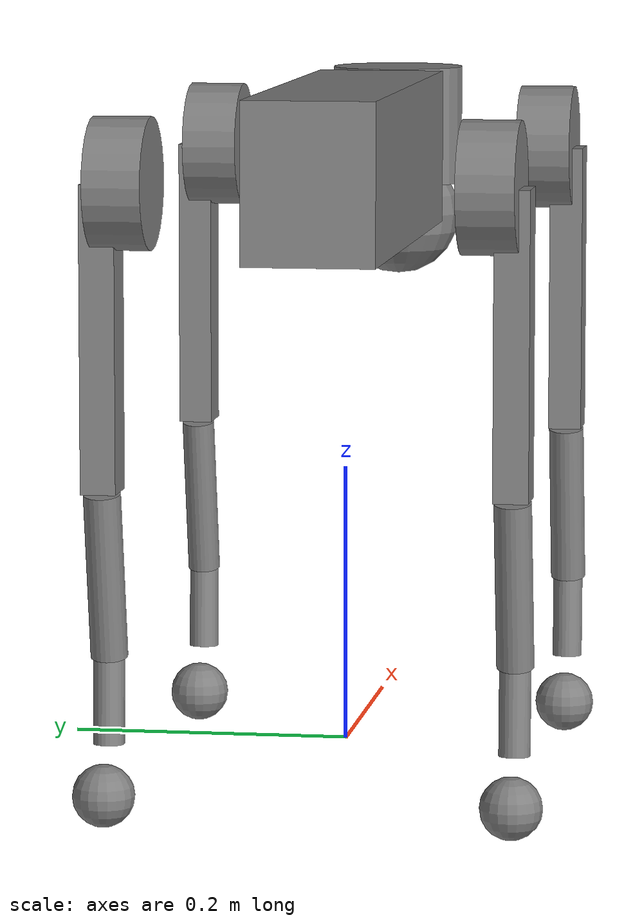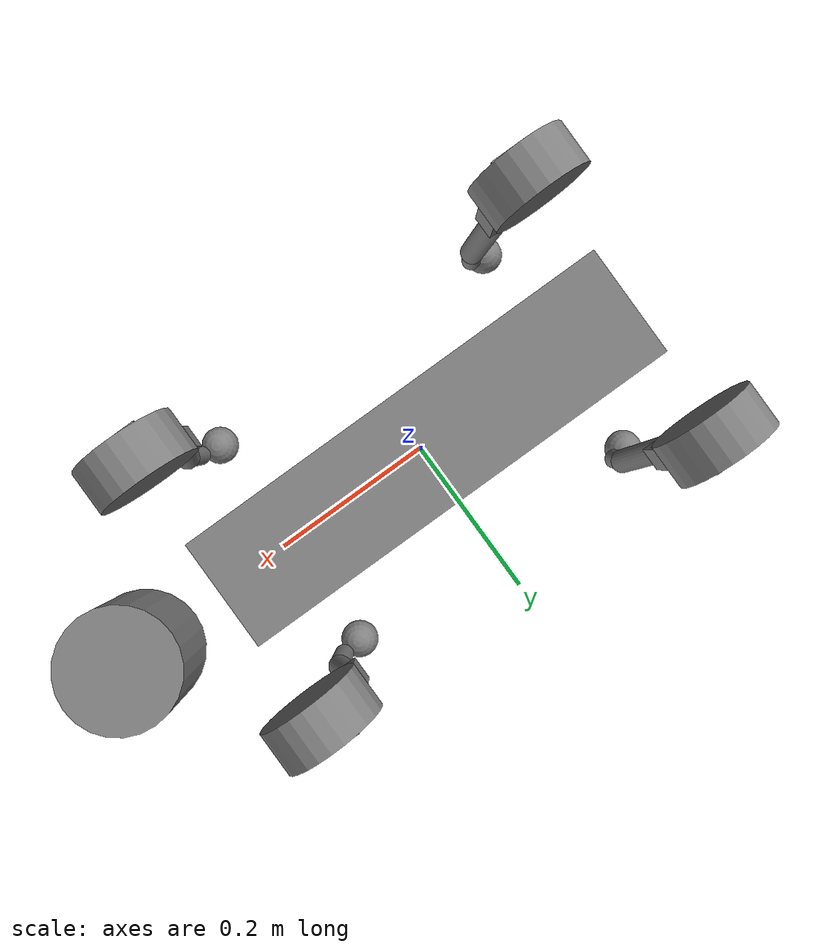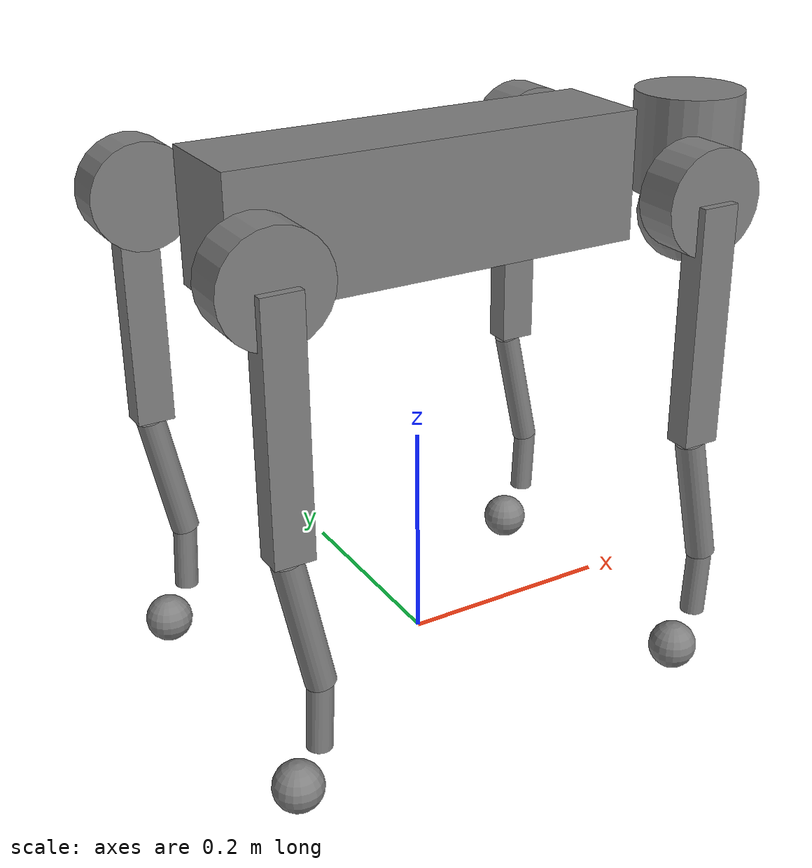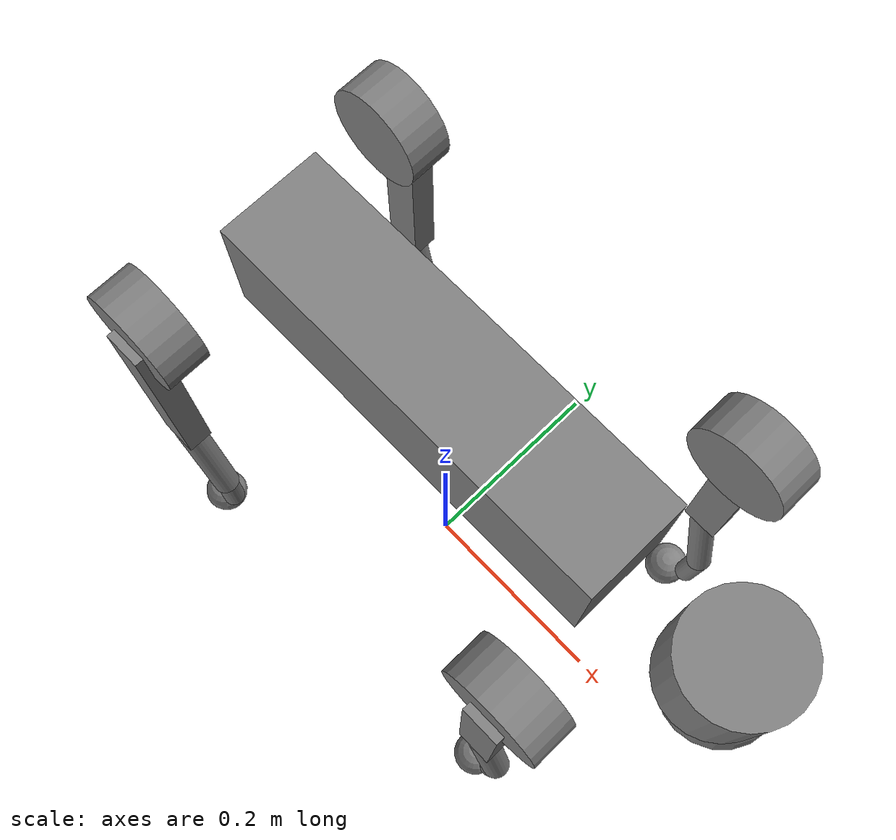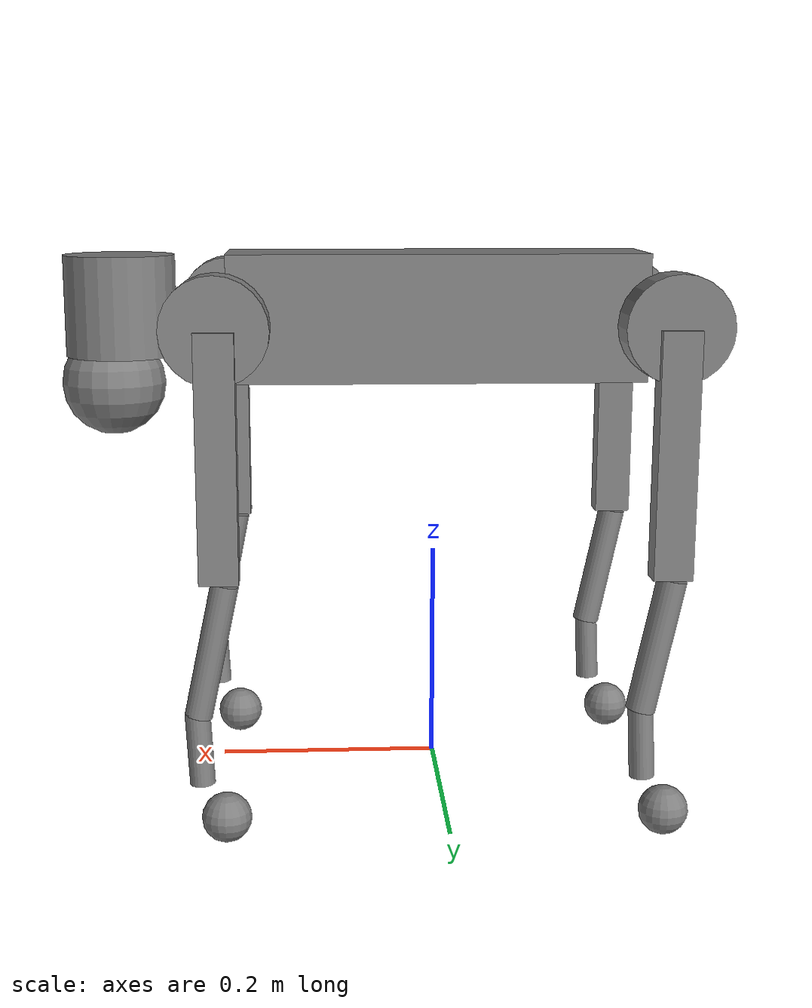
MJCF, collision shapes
<mujoco model="go2">

  <compiler angle="radian" meshdir="assets" autolimits="true" />

  <option cone="elliptic" impratio="100" />

  <default>
    <default class="go2">
      <geom friction="1.0" margin="0.001" condim="1"/>
      <!-- damping and armature explicit here; set armature="0" if rotor bodies
           are providing all reflected inertia and you want no double-counting -->
      <joint axis="0 1 0" damping="0.01" armature="0.01" frictionloss="0.0"/>
      <motor ctrlrange="-23.7 23.7"/>
      <default class="abduction">
        <joint axis="1 0 0" range="-1.0472 1.0472"/>
      </default>
      <default class="hip">
        <default class="front_hip">
          <joint range="-1.5708 3.4907" />
        </default>
        <default class="back_hip">
          <joint range="-0.5236 4.5379"/>
        </default>
      </default>
      <default class="knee">
        <joint range="-2.7227 -0.83776" damping="0.01"/>
        <motor ctrlrange="-45.43 45.43"/>
      </default>
      <default class="visual">
        <geom type="mesh" contype="0" conaffinity="0" group="2"/>
      </default>
      <default class="collision">
        <geom group="3"/>
        <default class="foot">
          <geom size="0.022" pos="-0.002 0 -0.213" priority="1" condim="6"
            friction="1.0 0.02 0.01"/>
        </default>
      </default>
      <!-- zero-mass placeholder for sensor/aux frames -->
      <default class="aux_frame">
        <geom contype="0" conaffinity="0" group="0" size="0.001"/>
      </default>
    </default>
  </default>

  <asset>
    <material name="metal" rgba=".9 .95 .95 1" />
    <material name="black" rgba="0 0 0 1" />
    <material name="white" rgba="1 1 1 1" />
    <material name="gray" rgba="0.671705 0.692426 0.774270 1" />
    <material name="grid_mat" texture="grid" texrepeat="10 10" texuniform="true" rgba="1 1 1 1"/>
    <texture name="grid" type="2d" builtin="checker" width="512" height="512" rgb1="0.8 0.8 0.8" rgb2="0.2 0.2 0.2"/>
    <mesh file="base_0.obj" />
    <mesh file="base_1.obj" />
    <mesh file="base_2.obj" />
    <mesh file="base_3.obj" />
    <mesh file="base_4.obj" />
    <mesh file="hip_0.obj" />
    <mesh file="hip_1.obj" />
    <mesh file="thigh_0.obj" />
    <mesh file="thigh_1.obj" />
    <mesh file="thigh_mirror_0.obj" />
    <mesh file="thigh_mirror_1.obj" />
    <mesh file="calf_0.obj" />
    <mesh file="calf_1.obj" />
    <mesh file="calf_mirror_0.obj" />
    <mesh file="calf_mirror_1.obj" />
    <mesh file="foot.obj" />
  </asset>

  <worldbody>
    <!-- PATCH: renamed base_link -> base to match URDF root link name -->
    <body name="base" pos="0 0 0.42" childclass="go2">
      <camera name="follow_cam" pos="-1.5 -0 1.8" euler="0 -0.870 -1.570" mode="trackcom" />
      <inertial pos="0.021112 0 -0.005366" mass="6.921"
        fullinertia="0.02448 0.098077 0.107 0.00012166 0.0014849 -0.0000312" />
      <freejoint />
      <geom mesh="base_0" material="black" class="visual" />
      <geom mesh="base_1" material="black" class="visual" />
      <geom mesh="base_2" material="black" class="visual" />
      <geom mesh="base_3" material="white" class="visual" />
      <geom mesh="base_4" material="gray" class="visual" />
      <geom size="0.1881 0.04675 0.057" type="box" class="collision" />
      <geom size="0.05 0.045" pos="0.285 0 0.01" type="cylinder" class="collision" />
      <geom size="0.047" pos="0.293 0 -0.06" class="collision" />
      <site name="imu" pos="-0.02557 0 0.04232" />

      <!-- PATCH: Head_upper — zero-mass fixed frame (matches URDF Head_upper_joint) -->
      <body name="Head_upper" pos="0.285 0 0.01">
        <inertial pos="0 0 0" mass="0.001"
          fullinertia="9.6e-06 9.6e-06 9.6e-06 0 0 0"/>
        <geom size="0.05 0.045" type="cylinder" class="collision" />
        <!-- PATCH: Head_lower chained (matches URDF Head_lower_joint xyz="0.008 0 -0.07") -->
        <body name="Head_lower" pos="0.008 0 -0.07">
          <inertial pos="0 0 0" mass="0.001"
            fullinertia="9.6e-06 9.6e-06 9.6e-06 0 0 0"/>
          <geom size="0.047" type="sphere" class="collision" />
        </body>
      </body>

      <!-- PATCH: radar frame (matches URDF radar_joint xyz="0.28945 0 -0.046825" rpy="0 2.8782 0") -->
      <!-- BUGFIX: was mass=0/zero-tensor which MuJoCo rejects; use tiny positive inertia -->
      <body name="radar" pos="0.28945 0 -0.046825" euler="0 2.8782 0">
        <inertial pos="0 0 0" mass="0.001"
          fullinertia="9.6e-06 9.6e-06 9.6e-06 0 0 0"/>
      </body>

      <!-- PATCH: front_camera frame (matches URDF front_camera_joint xyz="0.32715 -0.00003 0.04297") -->
      <!-- BUGFIX: was mass=0/zero-tensor which MuJoCo rejects; use tiny positive inertia -->
      <body name="front_camera" pos="0.32715 -0.00003 0.04297">
        <inertial pos="0 0 0" mass="0.001"
          fullinertia="9.6e-06 9.6e-06 9.6e-06 0 0 0"/>
      </body>

      <!-- PATCH: FR hip rotor (URDF: FR_hip_rotor_joint xyz="0.11215 -0.04675 0") -->
      <body name="FR_hip_rotor" pos="0.11215 -0.04675 0">
        <inertial pos="0 0 0" mass="0.089"
          fullinertia="0.000111842 0.000059647 0.000059647 0 0 0"/>
      </body>

      <!-- PATCH: FL hip rotor (URDF: FL_hip_rotor_joint xyz="0.11215 0.04675 0") -->
      <body name="FL_hip_rotor" pos="0.11215 0.04675 0">
        <inertial pos="0 0 0" mass="0.089"
          fullinertia="0.000111842 0.000059647 0.000059647 0 0 0"/>
      </body>

      <!-- PATCH: RR hip rotor (URDF: RR_hip_rotor_joint xyz="-0.11215 -0.04675 0") -->
      <body name="RR_hip_rotor" pos="-0.11215 -0.04675 0">
        <inertial pos="0 0 0" mass="0.089"
          fullinertia="0.000111842 0.000059647 0.000059647 0 0 0"/>
      </body>

      <!-- PATCH: RL hip rotor (URDF: RL_hip_rotor_joint xyz="-0.11215 0.04675 0") -->
      <body name="RL_hip_rotor" pos="-0.11215 0.04675 0">
        <inertial pos="0 0 0" mass="0.089"
          fullinertia="0.000111842 0.000059647 0.000059647 0 0 0"/>
      </body>

      <!-- FR leg: front right — qpos[7:10] -->
      <body name="FR_hip" pos="0.1934 -0.0465 0">
        <inertial pos="-0.0054 -0.00194 -0.000105" mass="0.678"
          fullinertia="0.00048 0.000884 0.000596 0.00000301 0.00000111 0.00000142" />
        <joint name="FR_hip_joint" class="abduction" damping="0.01"/>
        <geom mesh="hip_0" material="metal" class="visual" quat="4.63268e-05 1 0 0" />
        <geom mesh="hip_1" material="gray" class="visual" quat="4.63268e-05 1 0 0" />
        <geom size="0.046 0.02" pos="0 -0.08 0" quat="0.707107 0.707107 0 0" type="cylinder" class="collision" />
        <body name="FR_thigh" pos="0 -0.0955 0">
          <inertial pos="-0.00374 0.0223 -0.0327" mass="1.152"
            fullinertia="0.00584 0.0058 0.00103 -0.0000872 -0.000289 -0.000808" />
          <joint name="FR_thigh_joint" class="front_hip" damping="0.01"/>
          <!-- PATCH: FR thigh rotor (URDF: FR_thigh_rotor_joint xyz="0 0.00015 0") -->
          <body name="FR_thigh_rotor" pos="0 0.00015 0">
            <inertial pos="0 0 0" mass="0.089"
              fullinertia="0.000059647 0.000111842 0.000059647 0 0 0"/>
          </body>
          <geom mesh="thigh_mirror_0" material="metal" class="visual" />
          <geom mesh="thigh_mirror_1" material="gray" class="visual" />
          <geom size="0.1065 0.01225 0.017" pos="0 0 -0.1065" quat="0.707107 0 0.707107 0" type="box" class="collision" />
          <body name="FR_calf" pos="0 0 -0.213">
            <inertial pos="0.00548 0.000975 -0.115" mass="0.154"
              fullinertia="0.00108 0.0011 0.0000329 -0.00000034 0.0000172 -0.00000828" />
            <joint name="FR_calf_joint" class="knee" damping="0.01"/>
            <!-- PATCH: FR calf rotor (URDF: FR_calf_rotor_joint xyz="0 0.03235 0") -->
            <body name="FR_calf_rotor" pos="0 0.03235 0">
              <inertial pos="0 0 0" mass="0.089"
                fullinertia="0.000059647 0.000111842 0.000059647 0 0 0"/>
            </body>
            <geom mesh="calf_mirror_0" material="gray" class="visual" />
            <geom mesh="calf_mirror_1" material="black" class="visual" />
            <geom size="0.013 0.06" pos="0.01 0 -0.06" quat="0.995004 0 -0.0998334 0" type="cylinder" class="collision" />
            <geom size="0.011 0.0325" pos="0.02 0 -0.148" quat="0.999688 0 0.0249974 0" type="cylinder" class="collision" />
            <geom pos="0 0 -0.213" mesh="foot" class="visual" material="black" />
            <geom name="FR" class="foot" />
            <body name="FR_foot" pos="0 0 -0.213" />
            <site name="FR_foot_site" pos="0 0 -0.213"/>
          </body>
        </body>
      </body>

      <!-- FL leg: front left — qpos[10:13] -->
      <body name="FL_hip" pos="0.1934 0.0465 0">
        <inertial pos="-0.0054 0.00194 -0.000105" mass="0.678"
          fullinertia="0.00048 0.000884 0.000596 -0.00000301 0.00000111 -0.00000142" />
        <joint name="FL_hip_joint" class="abduction" damping="0.01"/>
        <geom mesh="hip_0" material="metal" class="visual" />
        <geom mesh="hip_1" material="gray" class="visual" />
        <geom size="0.046 0.02" pos="0 0.08 0" quat="1 1 0 0" type="cylinder" class="collision" />
        <body name="FL_thigh" pos="0 0.0955 0">
          <inertial pos="-0.00374 -0.0223 -0.0327" mass="1.152"
            fullinertia="0.00584 0.0058 0.00103 0.0000872 -0.000289 0.000808" />
          <joint name="FL_thigh_joint" class="front_hip" damping="0.01"/>
          <!-- PATCH: FL thigh rotor (URDF: FL_thigh_rotor_joint xyz="0 -0.00015 0") -->
          <body name="FL_thigh_rotor" pos="0 -0.00015 0">
            <inertial pos="0 0 0" mass="0.089"
              fullinertia="0.000059647 0.000111842 0.000059647 0 0 0"/>
          </body>
          <geom mesh="thigh_0" material="metal" class="visual" />
          <geom mesh="thigh_1" material="gray" class="visual" />
          <geom size="0.1065 0.01225 0.017" pos="0 0 -0.1065" quat="0.707107 0 0.707107 0" type="box" class="collision" />
          <body name="FL_calf" pos="0 0 -0.213">
            <inertial pos="0.00548 -0.000975 -0.115" mass="0.154"
              fullinertia="0.00108 0.0011 0.0000329 0.00000034 0.0000172 0.00000828" />
            <joint name="FL_calf_joint" class="knee" damping="0.01"/>
            <!-- PATCH: FL calf rotor (URDF: FL_calf_rotor_joint xyz="0 -0.03235 0") -->
            <body name="FL_calf_rotor" pos="0 -0.03235 0">
              <inertial pos="0 0 0" mass="0.089"
                fullinertia="0.000059647 0.000111842 0.000059647 0 0 0"/>
            </body>
            <geom mesh="calf_0" material="gray" class="visual" />
            <geom mesh="calf_1" material="black" class="visual" />
            <geom size="0.012 0.06" pos="0.008 0 -0.06" quat="0.994493 0 -0.104807 0" type="cylinder" class="collision" />
            <geom size="0.011 0.0325" pos="0.02 0 -0.148" quat="0.999688 0 0.0249974 0" type="cylinder" class="collision" />
            <geom pos="0 0 -0.213" mesh="foot" class="visual" material="black" />
            <geom name="FL" class="foot" />
            <body name="FL_foot" pos="0 0 -0.213" />
            <site name="FL_foot_site" pos="0 0 -0.213"/>
          </body>
        </body>
      </body>

      <!-- RR leg: rear right — qpos[13:16] -->
      <body name="RR_hip" pos="-0.1934 -0.0465 0">
        <inertial pos="0.0054 -0.00194 -0.000105" mass="0.678"
          fullinertia="0.00048 0.000884 0.000596 -0.00000301 -0.00000111 0.00000142" />
        <joint name="RR_hip_joint" class="abduction" damping="0.01"/>
        <geom mesh="hip_0" material="metal" class="visual" quat="2.14617e-09 4.63268e-05 4.63268e-05 -1" />
        <geom mesh="hip_1" material="gray" class="visual" quat="2.14617e-09 4.63268e-05 4.63268e-05 -1" />
        <geom size="0.046 0.02" pos="0 -0.08 0" quat="0.707107 0.707107 0 0" type="cylinder" class="collision" />
        <body name="RR_thigh" pos="0 -0.0955 0">
          <inertial pos="-0.00374 0.0223 -0.0327" mass="1.152"
            fullinertia="0.00584 0.0058 0.00103 -0.0000872 -0.000289 -0.000808" />
          <joint name="RR_thigh_joint" class="back_hip" damping="0.01"/>
          <!-- PATCH: RR thigh rotor (URDF: RR_thigh_rotor_joint xyz="0 0.00015 0") -->
          <body name="RR_thigh_rotor" pos="0 0.00015 0">
            <inertial pos="0 0 0" mass="0.089"
              fullinertia="0.000059647 0.000111842 0.000059647 0 0 0"/>
          </body>
          <geom mesh="thigh_mirror_0" material="metal" class="visual" />
          <geom mesh="thigh_mirror_1" material="gray" class="visual" />
          <geom size="0.1065 0.01225 0.017" pos="0 0 -0.1065" quat="0.707107 0 0.707107 0" type="box" class="collision" />
          <body name="RR_calf" pos="0 0 -0.213">
            <inertial pos="0.00548 0.000975 -0.115" mass="0.154"
              fullinertia="0.00108 0.0011 0.0000329 -0.00000034 0.0000172 -0.00000828" />
            <joint name="RR_calf_joint" class="knee" damping="0.01"/>
            <!-- PATCH: RR calf rotor (URDF: RR_calf_rotor_joint xyz="0 0.03235 0") -->
            <body name="RR_calf_rotor" pos="0 0.03235 0">
              <inertial pos="0 0 0" mass="0.089"
                fullinertia="0.000059647 0.000111842 0.000059647 0 0 0"/>
            </body>
            <geom mesh="calf_mirror_0" material="gray" class="visual" />
            <geom mesh="calf_mirror_1" material="black" class="visual" />
            <geom size="0.013 0.06" pos="0.01 0 -0.06" quat="0.995004 0 -0.0998334 0" type="cylinder" class="collision" />
            <geom size="0.011 0.0325" pos="0.02 0 -0.148" quat="0.999688 0 0.0249974 0" type="cylinder" class="collision" />
            <geom pos="0 0 -0.213" mesh="foot" class="visual" material="black" />
            <geom name="RR" class="foot" />
            <body name="RR_foot" pos="0 0 -0.213" />
            <site name="RR_foot_site" pos="0 0 -0.213"/>
          </body>
        </body>
      </body>

      <!-- RL leg: rear left — qpos[16:19] -->
      <body name="RL_hip" pos="-0.1934 0.0465 0">
        <inertial pos="0.0054 0.00194 -0.000105" mass="0.678"
          fullinertia="0.00048 0.000884 0.000596 0.00000301 -0.00000111 -0.00000142" />
        <joint name="RL_hip_joint" class="abduction" damping="0.01"/>
        <geom mesh="hip_0" material="metal" class="visual" quat="4.63268e-05 0 1 0" />
        <geom mesh="hip_1" material="gray" class="visual" quat="4.63268e-05 0 1 0" />
        <geom size="0.046 0.02" pos="0 0.08 0" quat="0.707107 0.707107 0 0" type="cylinder" class="collision" />
        <body name="RL_thigh" pos="0 0.0955 0">
          <inertial pos="-0.00374 -0.0223 -0.0327" mass="1.152"
            fullinertia="0.00584 0.0058 0.00103 0.0000872 -0.000289 0.000808" />
          <joint name="RL_thigh_joint" class="back_hip" damping="0.01"/>
          <!-- PATCH: RL thigh rotor (URDF: RL_thigh_rotor_joint xyz="0 -0.00015 0") -->
          <body name="RL_thigh_rotor" pos="0 -0.00015 0">
            <inertial pos="0 0 0" mass="0.089"
              fullinertia="0.000059647 0.000111842 0.000059647 0 0 0"/>
          </body>
          <geom mesh="thigh_0" material="metal" class="visual" />
          <geom mesh="thigh_1" material="gray" class="visual" />
          <geom size="0.1065 0.01225 0.017" pos="0 0 -0.1065" quat="0.707107 0 0.707107 0" type="box" class="collision" />
          <body name="RL_calf" pos="0 0 -0.213">
            <inertial pos="0.00548 -0.000975 -0.115" mass="0.154"
              fullinertia="0.00108 0.0011 0.0000329 0.00000034 0.0000172 0.00000828" />
            <joint name="RL_calf_joint" class="knee" damping="0.01"/>
            <!-- PATCH: RL calf rotor (URDF: RL_calf_rotor_joint xyz="0 -0.03235 0") -->
            <body name="RL_calf_rotor" pos="0 -0.03235 0">
              <inertial pos="0 0 0" mass="0.089"
                fullinertia="0.000059647 0.000111842 0.000059647 0 0 0"/>
            </body>
            <geom mesh="calf_0" material="gray" class="visual" />
            <geom mesh="calf_1" material="black" class="visual" />
            <geom size="0.013 0.06" pos="0.01 0 -0.06" quat="0.995004 0 -0.0998334 0" type="cylinder" class="collision" />
            <geom size="0.011 0.0325" pos="0.02 0 -0.148" quat="0.999688 0 0.0249974 0" type="cylinder" class="collision" />
            <geom pos="0 0 -0.213" mesh="foot" class="visual" material="black" />
            <geom name="RL" class="foot" />
            <body name="RL_foot" pos="0 0 -0.213" />
            <site name="RL_foot_site" pos="0 0 -0.213"/>
          </body>
        </body>
      </body>

    </body>
  </worldbody>

  <actuator>
    <motor class="abduction" name="FR_hip"   joint="FR_hip_joint" />
    <motor class="hip"       name="FR_thigh" joint="FR_thigh_joint" />
    <motor class="knee"      name="FR_calf"  joint="FR_calf_joint" />
    <motor class="abduction" name="FL_hip"   joint="FL_hip_joint" />
    <motor class="hip"       name="FL_thigh" joint="FL_thigh_joint" />
    <motor class="knee"      name="FL_calf"  joint="FL_calf_joint" />
    <motor class="abduction" name="RR_hip"   joint="RR_hip_joint" />
    <motor class="hip"       name="RR_thigh" joint="RR_thigh_joint" />
    <motor class="knee"      name="RR_calf"  joint="RR_calf_joint" />
    <motor class="abduction" name="RL_hip"   joint="RL_hip_joint" />
    <motor class="hip"       name="RL_thigh" joint="RL_thigh_joint" />
    <motor class="knee"      name="RL_calf"  joint="RL_calf_joint" />
  </actuator>

  <sensor>
    <jointpos name="FR_hip_pos"    joint="FR_hip_joint" />
    <jointpos name="FR_thigh_pos"  joint="FR_thigh_joint" />
    <jointpos name="FR_calf_pos"   joint="FR_calf_joint" />
    <jointpos name="FL_hip_pos"    joint="FL_hip_joint" />
    <jointpos name="FL_thigh_pos"  joint="FL_thigh_joint" />
    <jointpos name="FL_calf_pos"   joint="FL_calf_joint" />
    <jointpos name="RR_hip_pos"    joint="RR_hip_joint" />
    <jointpos name="RR_thigh_pos"  joint="RR_thigh_joint" />
    <jointpos name="RR_calf_pos"   joint="RR_calf_joint" />
    <jointpos name="RL_hip_pos"    joint="RL_hip_joint" />
    <jointpos name="RL_thigh_pos"  joint="RL_thigh_joint" />
    <jointpos name="RL_calf_pos"   joint="RL_calf_joint" />

    <jointvel name="FR_hip_vel"    joint="FR_hip_joint" />
    <jointvel name="FR_thigh_vel"  joint="FR_thigh_joint" />
    <jointvel name="FR_calf_vel"   joint="FR_calf_joint" />
    <jointvel name="FL_hip_vel"    joint="FL_hip_joint" />
    <jointvel name="FL_thigh_vel"  joint="FL_thigh_joint" />
    <jointvel name="FL_calf_vel"   joint="FL_calf_joint" />
    <jointvel name="RR_hip_vel"    joint="RR_hip_joint" />
    <jointvel name="RR_thigh_vel"  joint="RR_thigh_joint" />
    <jointvel name="RR_calf_vel"   joint="RR_calf_joint" />
    <jointvel name="RL_hip_vel"    joint="RL_hip_joint" />
    <jointvel name="RL_thigh_vel"  joint="RL_thigh_joint" />
    <jointvel name="RL_calf_vel"   joint="RL_calf_joint" />

    <jointactuatorfrc name="FR_hip_torque"   joint="FR_hip_joint"   noise="0.01" />
    <jointactuatorfrc name="FR_thigh_torque" joint="FR_thigh_joint" noise="0.01" />
    <jointactuatorfrc name="FR_calf_torque"  joint="FR_calf_joint"  noise="0.01" />
    <jointactuatorfrc name="FL_hip_torque"   joint="FL_hip_joint"   noise="0.01" />
    <jointactuatorfrc name="FL_thigh_torque" joint="FL_thigh_joint" noise="0.01" />
    <jointactuatorfrc name="FL_calf_torque"  joint="FL_calf_joint"  noise="0.01" />
    <jointactuatorfrc name="RR_hip_torque"   joint="RR_hip_joint"   noise="0.01" />
    <jointactuatorfrc name="RR_thigh_torque" joint="RR_thigh_joint" noise="0.01" />
    <jointactuatorfrc name="RR_calf_torque"  joint="RR_calf_joint"  noise="0.01" />
    <jointactuatorfrc name="RL_hip_torque"   joint="RL_hip_joint"   noise="0.01" />
    <jointactuatorfrc name="RL_thigh_torque" joint="RL_thigh_joint" noise="0.01" />
    <jointactuatorfrc name="RL_calf_torque"  joint="RL_calf_joint"  noise="0.01" />

    <framequat   name="imu_quat"  objtype="site" objname="imu" />
    <gyro        name="imu_gyro"  site="imu" />
    <accelerometer name="imu_acc" site="imu" />

    <framepos    name="frame_pos" objtype="site" objname="imu" />
    <framelinvel name="frame_vel" objtype="site" objname="imu" />
    <velocimeter name="local_vel" site="imu" />

    <force name="FL_foot_force" site="FL_foot_site" />
    <force name="FR_foot_force" site="FR_foot_site" />
    <force name="RL_foot_force" site="RL_foot_site" />
    <force name="RR_foot_force" site="RR_foot_site" />
  </sensor>

</mujoco>
